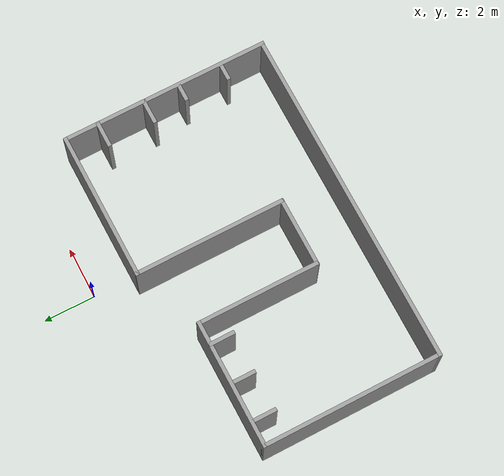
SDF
<?xml version='1.0'?>
<sdf version='1.7'>
  <model name='two_part_map'>
    <pose>-1.52996 -4.79253 0 0 -0 0</pose>
    <link name='Wall_0'>
      <collision name='Wall_0_Collision'>
        <geometry>
          <box>
            <size>7 0.15 2.5</size>
          </box>
        </geometry>
        <pose>0 0 1.25 0 -0 0</pose>
      </collision>
      <visual name='Wall_0_Visual'>
        <pose>0 0 1.25 0 -0 0</pose>
        <geometry>
          <box>
            <size>7 0.15 2.5</size>
          </box>
        </geometry>
        <material>
          <script>
            <uri>file://media/materials/scripts/gazebo.material</uri>
            <name>Gazebo/Grey</name>
          </script>
          <ambient>1 1 1 1</ambient>
        </material>
        <meta>
          <layer>0</layer>
        </meta>
      </visual>
      <pose>-6.54004 -1.29247 0 0 -0 1.5708</pose>
    </link>
    <link name='Wall_1'>
      <collision name='Wall_1_Collision'>
        <geometry>
          <box>
            <size>5 0.15 2.5</size>
          </box>
        </geometry>
        <pose>0 0 1.25 0 -0 0</pose>
      </collision>
      <visual name='Wall_1_Visual'>
        <pose>0 0 1.25 0 -0 0</pose>
        <geometry>
          <box>
            <size>5 0.15 2.5</size>
          </box>
        </geometry>
        <material>
          <script>
            <uri>file://media/materials/scripts/gazebo.material</uri>
            <name>Gazebo/Grey</name>
          </script>
          <ambient>1 1 1 1</ambient>
        </material>
        <meta>
          <layer>0</layer>
        </meta>
      </visual>
      <pose>-4.11504 2.13253 0 0 -0 0</pose>
    </link>
    <link name='Wall_11'>
      <collision name='Wall_11_Collision'>
        <geometry>
          <box>
            <size>1 0.15 2.5</size>
          </box>
        </geometry>
        <pose>0 0 1.25 0 -0 0</pose>
      </collision>
      <visual name='Wall_11_Visual'>
        <pose>0 0 1.25 0 -0 0</pose>
        <geometry>
          <box>
            <size>1 0.15 2.5</size>
          </box>
        </geometry>
        <material>
          <script>
            <uri>file://media/materials/scripts/gazebo.material</uri>
            <name>Gazebo/Grey</name>
          </script>
          <ambient>1 1 1 1</ambient>
        </material>
        <meta>
          <layer>0</layer>
        </meta>
      </visual>
      <pose>-4.10004 1.69753 0 0 -0 -1.5708</pose>
    </link>
    <link name='Wall_13'>
      <collision name='Wall_13_Collision'>
        <geometry>
          <box>
            <size>1 0.15 2.5</size>
          </box>
        </geometry>
        <pose>0 0 1.25 0 -0 0</pose>
      </collision>
      <visual name='Wall_13_Visual'>
        <pose>0 0 1.25 0 -0 0</pose>
        <geometry>
          <box>
            <size>1 0.15 2.5</size>
          </box>
        </geometry>
        <material>
          <script>
            <uri>file://media/materials/scripts/gazebo.material</uri>
            <name>Gazebo/Grey</name>
          </script>
          <ambient>1 1 1 1</ambient>
        </material>
        <meta>
          <layer>0</layer>
        </meta>
      </visual>
      <pose>-2.54004 1.68753 0 0 -0 -1.5708</pose>
    </link>
    <link name='Wall_15'>
      <collision name='Wall_15_Collision'>
        <geometry>
          <box>
            <size>1 0.15 2.5</size>
          </box>
        </geometry>
        <pose>0 0 1.25 0 -0 0</pose>
      </collision>
      <visual name='Wall_15_Visual'>
        <pose>0 0 1.25 0 -0 0</pose>
        <geometry>
          <box>
            <size>1 0.15 2.5</size>
          </box>
        </geometry>
        <material>
          <script>
            <uri>file://media/materials/scripts/gazebo.material</uri>
            <name>Gazebo/Grey</name>
          </script>
          <ambient>1 1 1 1</ambient>
        </material>
        <meta>
          <layer>0</layer>
        </meta>
      </visual>
      <pose>6.07496 1.95253 0 0 -0 3.14159</pose>
    </link>
    <link name='Wall_17'>
      <collision name='Wall_17_Collision'>
        <geometry>
          <box>
            <size>1 0.15 2.5</size>
          </box>
        </geometry>
        <pose>0 0 1.25 0 -0 0</pose>
      </collision>
      <visual name='Wall_17_Visual'>
        <pose>0 0 1.25 0 -0 0</pose>
        <geometry>
          <box>
            <size>1 0.15 2.5</size>
          </box>
        </geometry>
        <material>
          <script>
            <uri>file://media/materials/scripts/gazebo.material</uri>
            <name>Gazebo/Grey</name>
          </script>
          <ambient>1 1 1 1</ambient>
        </material>
        <meta>
          <layer>0</layer>
        </meta>
      </visual>
      <pose>6.11496 0.112529 0 0 -0 3.14159</pose>
    </link>
    <link name='Wall_19'>
      <collision name='Wall_19_Collision'>
        <geometry>
          <box>
            <size>0.75 0.15 2.5</size>
          </box>
        </geometry>
        <pose>0 0 1.25 0 -0 0</pose>
      </collision>
      <visual name='Wall_19_Visual'>
        <pose>0 0 1.25 0 -0 0</pose>
        <geometry>
          <box>
            <size>0.75 0.15 2.5</size>
          </box>
        </geometry>
        <material>
          <script>
            <uri>file://media/materials/scripts/gazebo.material</uri>
            <name>Gazebo/Grey</name>
          </script>
          <ambient>1 1 1 1</ambient>
        </material>
        <meta>
          <layer>0</layer>
        </meta>
      </visual>
      <pose>6.22996 -1.28747 0 0 -0 3.14159</pose>
    </link>
    <link name='Wall_2'>
      <collision name='Wall_2_Collision'>
        <geometry>
          <box>
            <size>4.78 0.15 2.5</size>
          </box>
        </geometry>
        <pose>0 0 1.25 0 -0 0</pose>
      </collision>
      <visual name='Wall_2_Visual'>
        <pose>0 0 1.25 0 -0 0</pose>
        <geometry>
          <box>
            <size>4.78 0.15 2.5</size>
          </box>
        </geometry>
        <material>
          <script>
            <uri>file://media/materials/scripts/gazebo.material</uri>
            <name>Gazebo/Grey</name>
          </script>
          <ambient>1 1 1 1</ambient>
        </material>
        <meta>
          <layer>0</layer>
        </meta>
      </visual>
      <pose>-1.69004 -0.182471 0 0 -0 -1.5708</pose>
    </link>
    <link name='Wall_21'>
      <collision name='Wall_21_Collision'>
        <geometry>
          <box>
            <size>0.75 0.15 2.5</size>
          </box>
        </geometry>
        <pose>0 0 1.25 0 -0 0</pose>
      </collision>
      <visual name='Wall_21_Visual'>
        <pose>0 0 1.25 0 -0 0</pose>
        <geometry>
          <box>
            <size>0.75 0.15 2.5</size>
          </box>
        </geometry>
        <material>
          <script>
            <uri>file://media/materials/scripts/gazebo.material</uri>
            <name>Gazebo/Grey</name>
          </script>
          <ambient>1 1 1 1</ambient>
        </material>
        <meta>
          <layer>0</layer>
        </meta>
      </visual>
      <pose>6.23996 -2.99747 0 0 -0 3.14159</pose>
    </link>
    <link name='Wall_3'>
      <collision name='Wall_3_Collision'>
        <geometry>
          <box>
            <size>2.75 0.15 2.5</size>
          </box>
        </geometry>
        <pose>0 0 1.25 0 -0 0</pose>
      </collision>
      <visual name='Wall_3_Visual'>
        <pose>0 0 1.25 0 -0 0</pose>
        <geometry>
          <box>
            <size>2.75 0.15 2.5</size>
          </box>
        </geometry>
        <material>
          <script>
            <uri>file://media/materials/scripts/gazebo.material</uri>
            <name>Gazebo/Grey</name>
          </script>
          <ambient>1 1 1 1</ambient>
        </material>
        <meta>
          <layer>0</layer>
        </meta>
      </visual>
      <pose>-0.390038 -2.51747 0 0 -0 0</pose>
    </link>
    <link name='Wall_4'>
      <collision name='Wall_4_Collision'>
        <geometry>
          <box>
            <size>5.88 0.15 2.5</size>
          </box>
        </geometry>
        <pose>0 0 1.25 0 -0 0</pose>
      </collision>
      <visual name='Wall_4_Visual'>
        <pose>0 0 1.25 0 -0 0</pose>
        <geometry>
          <box>
            <size>5.88 0.15 2.5</size>
          </box>
        </geometry>
        <material>
          <script>
            <uri>file://media/materials/scripts/gazebo.material</uri>
            <name>Gazebo/Grey</name>
          </script>
          <ambient>1 1 1 1</ambient>
        </material>
        <meta>
          <layer>0</layer>
        </meta>
      </visual>
      <pose>0.909962 0.367528 0 0 -0 1.5708</pose>
    </link>
    <link name='Wall_5'>
      <collision name='Wall_5_Collision'>
        <geometry>
          <box>
            <size>5.77001 0.15 2.5</size>
          </box>
        </geometry>
        <pose>0 0 1.25 0 -0 0</pose>
      </collision>
      <visual name='Wall_5_Visual'>
        <pose>0 0 1.25 0 -0 0</pose>
        <geometry>
          <box>
            <size>5.77001 0.15 2.5</size>
          </box>
        </geometry>
        <material>
          <script>
            <uri>file://media/materials/scripts/gazebo.material</uri>
            <name>Gazebo/Grey</name>
          </script>
          <ambient>1 1 1 1</ambient>
        </material>
        <meta>
          <layer>0</layer>
        </meta>
      </visual>
      <pose>3.72996 3.23753 0 0 -0 0.001779</pose>
    </link>
    <link name='Wall_6'>
      <collision name='Wall_6_Collision'>
        <geometry>
          <box>
            <size>8.1 0.15 2.5</size>
          </box>
        </geometry>
        <pose>0 0 1.25 0 -0 0</pose>
      </collision>
      <visual name='Wall_6_Visual'>
        <pose>0 0 1.25 0 -0 0</pose>
        <geometry>
          <box>
            <size>8.1 0.15 2.5</size>
          </box>
        </geometry>
        <material>
          <script>
            <uri>file://media/materials/scripts/gazebo.material</uri>
            <name>Gazebo/Grey</name>
          </script>
          <ambient>1 1 1 1</ambient>
        </material>
        <meta>
          <layer>0</layer>
        </meta>
      </visual>
      <pose>6.53996 -0.742471 0 0 -0 -1.5708</pose>
    </link>
    <link name='Wall_7'>
      <collision name='Wall_7_Collision'>
        <geometry>
          <box>
            <size>13.23 0.15 2.5</size>
          </box>
        </geometry>
        <pose>0 0 1.25 0 -0 0</pose>
      </collision>
      <visual name='Wall_7_Visual'>
        <pose>0 0 1.25 0 -0 0</pose>
        <geometry>
          <box>
            <size>13.23 0.15 2.5</size>
          </box>
        </geometry>
        <material>
          <script>
            <uri>file://media/materials/scripts/gazebo.material</uri>
            <name>Gazebo/Grey</name>
          </script>
          <ambient>1 1 1 1</ambient>
        </material>
        <meta>
          <layer>0</layer>
        </meta>
      </visual>
      <pose>-3.8e-05 -4.71247 0 0 -0 -3.14083</pose>
    </link>
    <link name='Wall_9'>
      <collision name='Wall_9_Collision'>
        <geometry>
          <box>
            <size>1 0.15 2.5</size>
          </box>
        </geometry>
        <pose>0 0 1.25 0 -0 0</pose>
      </collision>
      <visual name='Wall_9_Visual'>
        <pose>0 0 1.25 0 -0 0</pose>
        <geometry>
          <box>
            <size>1 0.15 2.5</size>
          </box>
        </geometry>
        <material>
          <script>
            <uri>file://media/materials/scripts/gazebo.material</uri>
            <name>Gazebo/Grey</name>
          </script>
          <ambient>1 1 1 1</ambient>
        </material>
        <meta>
          <layer>0</layer>
        </meta>
      </visual>
      <pose>-5.61004 1.67753 0 0 -0 -1.5708</pose>
    </link>
    <static>1</static>
  </model>
</sdf>
